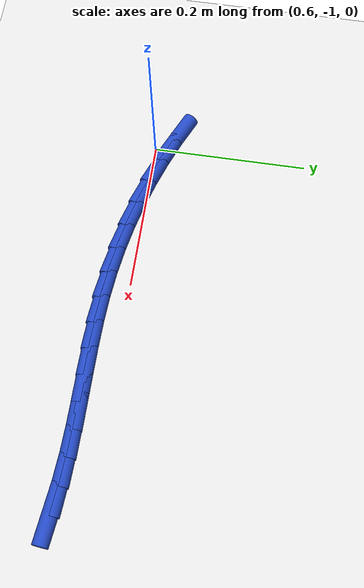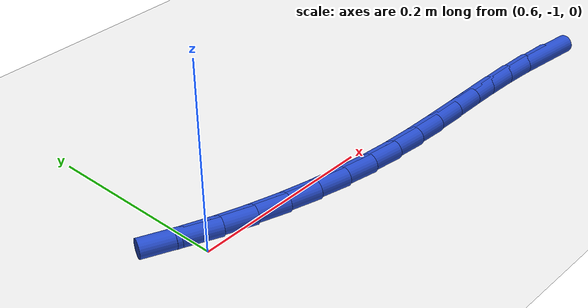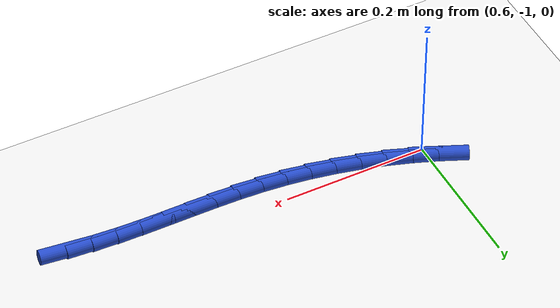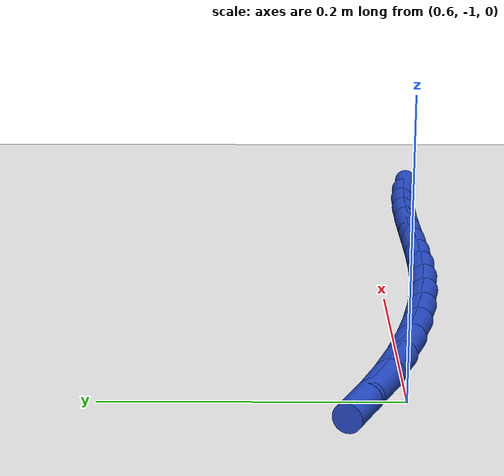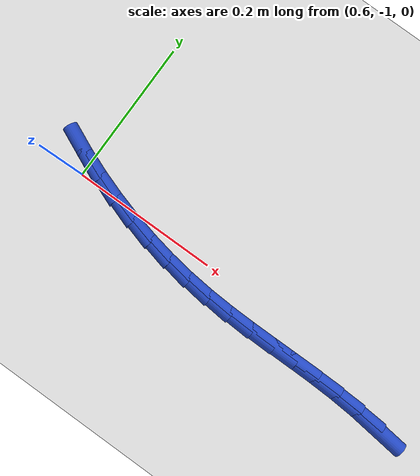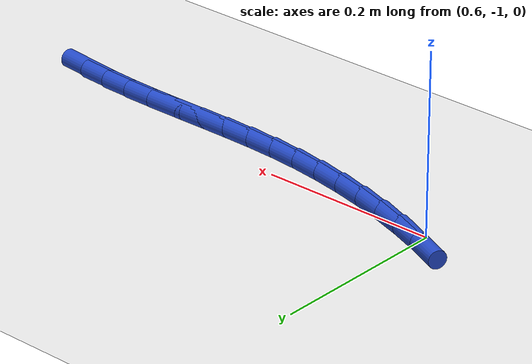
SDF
<sdf version="1.6">
 <world name="default">
  <model name="ground_plane">
   <static>1</static>
   <link name="link">
    <collision name="collision">
     <geometry><plane><normal>0 0 1</normal><size>100 100</size></plane></geometry>
     <surface><friction><ode><mu>100</mu><mu2>50</mu2></ode></friction></surface>
    </collision>
    <visual name="visual">
     <cast_shadows>0</cast_shadows>
     <geometry><plane><normal>0 0 1</normal><size>100 100</size></plane></geometry>
     <material>
      <script><uri>file://media/materials/scripts/gazebo.material</uri><name>Gazebo/WhiteGlow</name></script>
     </material>
    </visual>
   </link>
  </model>
  <model name="line">
   <link name="link_150">
    <pose>1.091584570807914 -1.0406383326134858 0.01 0 1.57 -0.11338291007146395</pose>
    <collision name="collision">
     <geometry><cylinder><radius>0.01</radius><length>0.08</length></cylinder></geometry>
    </collision>
    <visual name="visual">
     <material>
      <script><name>Gazebo/Blue</name><uri>file://media/materials/scripts/gazebo.material</uri></script>
     </material>
     <geometry><cylinder><radius>0.01</radius><length>0.08</length></cylinder></geometry>
    </visual>
   </link>
   <link name="link_151">
    <pose>1.057123456048985 -1.0367142009087924 0.01 0 1.57 -0.0650261353724896</pose>
    <collision name="collision">
     <geometry><cylinder><radius>0.01</radius><length>0.08</length></cylinder></geometry>
    </collision>
    <visual name="visual">
     <material>
      <script><name>Gazebo/Blue</name><uri>file://media/materials/scripts/gazebo.material</uri></script>
     </material>
     <geometry><cylinder><radius>0.01</radius><length>0.08</length></cylinder></geometry>
    </visual>
   </link>
   <link name="link_152">
    <pose>1.0230234818593003 -1.0344936807404375 0.01 0 1.57 -0.028891346559565594</pose>
    <collision name="collision">
     <geometry><cylinder><radius>0.01</radius><length>0.08</length></cylinder></geometry>
    </collision>
    <visual name="visual">
     <material>
      <script><name>Gazebo/Blue</name><uri>file://media/materials/scripts/gazebo.material</uri></script>
     </material>
     <geometry><cylinder><radius>0.01</radius><length>0.08</length></cylinder></geometry>
    </visual>
   </link>
   <link name="link_153">
    <pose>0.9892119029032866 -1.0335165468055045 0.01 0 1.57 -0.0057736414649946334</pose>
    <collision name="collision">
     <geometry><cylinder><radius>0.01</radius><length>0.08</length></cylinder></geometry>
    </collision>
    <visual name="visual">
     <material>
      <script><name>Gazebo/Blue</name><uri>file://media/materials/scripts/gazebo.material</uri></script>
     </material>
     <geometry><cylinder><radius>0.01</radius><length>0.08</length></cylinder></geometry>
    </visual>
   </link>
   <link name="link_154">
    <pose>0.9556159738453708 -1.0333225738010767 0.01 0 1.57 0.003855017184916673</pose>
    <collision name="collision">
     <geometry><cylinder><radius>0.01</radius><length>0.08</length></cylinder></geometry>
    </collision>
    <visual name="visual">
     <material>
      <script><name>Gazebo/Blue</name><uri>file://media/materials/scripts/gazebo.material</uri></script>
     </material>
     <geometry><cylinder><radius>0.01</radius><length>0.08</length></cylinder></geometry>
    </visual>
   </link>
   <link name="link_155">
    <pose>0.92216294934998 -1.0334515364242391 0.01 0 1.57 -0.0002494409010571956</pose>
    <collision name="collision">
     <geometry><cylinder><radius>0.01</radius><length>0.08</length></cylinder></geometry>
    </collision>
    <visual name="visual">
     <material>
      <script><name>Gazebo/Blue</name><uri>file://media/materials/scripts/gazebo.material</uri></script>
     </material>
     <geometry><cylinder><radius>0.01</radius><length>0.08</length></cylinder></geometry>
    </visual>
   </link>
   <link name="link_156">
    <pose>0.8887800840815403 -1.033443209372074 0.01 0 1.57 -0.018144895916467233</pose>
    <collision name="collision">
     <geometry><cylinder><radius>0.01</radius><length>0.08</length></cylinder></geometry>
    </collision>
    <visual name="visual">
     <material>
      <script><name>Gazebo/Blue</name><uri>file://media/materials/scripts/gazebo.material</uri></script>
     </material>
     <geometry><cylinder><radius>0.01</radius><length>0.08</length></cylinder></geometry>
    </visual>
   </link>
   <link name="link_157">
    <pose>0.8553946327044792 -1.032837367341666 0.01 0 1.57 -0.0496764722788299</pose>
    <collision name="collision">
     <geometry><cylinder><radius>0.01</radius><length>0.08</length></cylinder></geometry>
    </collision>
    <visual name="visual">
     <material>
      <script><name>Gazebo/Blue</name><uri>file://media/materials/scripts/gazebo.material</uri></script>
     </material>
     <geometry><cylinder><radius>0.01</radius><length>0.08</length></cylinder></geometry>
    </visual>
   </link>
   <link name="link_158">
    <pose>0.8219338498832232 -1.0311737850300986 0.01 0 1.57 -0.09357650028104567</pose>
    <collision name="collision">
     <geometry><cylinder><radius>0.01</radius><length>0.08</length></cylinder></geometry>
    </collision>
    <visual name="visual">
     <material>
      <script><name>Gazebo/Blue</name><uri>file://media/materials/scripts/gazebo.material</uri></script>
     </material>
     <geometry><cylinder><radius>0.01</radius><length>0.08</length></cylinder></geometry>
    </visual>
   </link>
   <link name="link_159">
    <pose>0.7883367205108551 -1.0280206743977862 0.01 0 1.57 -0.14124827755428127</pose>
    <collision name="collision">
     <geometry><cylinder><radius>0.01</radius><length>0.08</length></cylinder></geometry>
    </collision>
    <visual name="visual">
     <material>
      <script><name>Gazebo/Blue</name><uri>file://media/materials/scripts/gazebo.material</uri></script>
     </material>
     <geometry><cylinder><radius>0.01</radius><length>0.08</length></cylinder></geometry>
    </visual>
   </link>
   <link name="link_160">
    <pose>0.7546601102829729 -1.0232320225183986 0.01 0 1.57 -0.1881977005239545</pose>
    <collision name="collision">
     <geometry><cylinder><radius>0.01</radius><length>0.08</length></cylinder></geometry>
    </collision>
    <visual name="visual">
     <material>
      <script><name>Gazebo/Blue</name><uri>file://media/materials/scripts/gazebo.material</uri></script>
     </material>
     <geometry><cylinder><radius>0.01</radius><length>0.08</length></cylinder></geometry>
    </visual>
   </link>
   <link name="link_161">
    <pose>0.7210289912149164 -1.0168269247005584 0.01 0 1.57 -0.2346994875162252</pose>
    <collision name="collision">
     <geometry><cylinder><radius>0.01</radius><length>0.08</length></cylinder></geometry>
    </collision>
    <visual name="visual">
     <material>
      <script><name>Gazebo/Blue</name><uri>file://media/materials/scripts/gazebo.material</uri></script>
     </material>
     <geometry><cylinder><radius>0.01</radius><length>0.08</length></cylinder></geometry>
    </visual>
   </link>
   <link name="link_162">
    <pose>0.6875691614721905 -1.0088264790654884 0.01 0 1.57 -0.28107487865710296</pose>
    <collision name="collision">
     <geometry><cylinder><radius>0.01</radius><length>0.08</length></cylinder></geometry>
    </collision>
    <visual name="visual">
     <material>
      <script><name>Gazebo/Blue</name><uri>file://media/materials/scripts/gazebo.material</uri></script>
     </material>
     <geometry><cylinder><radius>0.01</radius><length>0.08</length></cylinder></geometry>
    </visual>
   </link>
   <link name="link_163">
    <pose>0.6544064192202991 -0.9992517837344126 0.01 0 1.57 -0.3276370829188992</pose>
    <collision name="collision">
     <geometry><cylinder><radius>0.01</radius><length>0.08</length></cylinder></geometry>
    </collision>
    <visual name="visual">
     <material>
      <script><name>Gazebo/Blue</name><uri>file://media/materials/scripts/gazebo.material</uri></script>
     </material>
     <geometry><cylinder><radius>0.01</radius><length>0.08</length></cylinder></geometry>
    </visual>
   </link>
   <link name="link_164">
    <pose>0.6216665626247465 -0.9881239368285532 0.01 0 1.57 -0.3746933174426562</pose>
    <collision name="collision">
     <geometry><cylinder><radius>0.01</radius><length>0.08</length></cylinder></geometry>
    </collision>
    <visual name="visual">
     <material>
      <script><name>Gazebo/Blue</name><uri>file://media/materials/scripts/gazebo.material</uri></script>
     </material>
     <geometry><cylinder><radius>0.01</radius><length>0.08</length></cylinder></geometry>
    </visual>
   </link>
   <link name="link_165">
    <pose>0.5894753898510371 -0.9754640364691332 0.01 0 1.57 -0.42254634994151935</pose>
    <collision name="collision">
     <geometry><cylinder><radius>0.01</radius><length>0.08</length></cylinder></geometry>
    </collision>
    <visual name="visual">
     <material>
      <script><name>Gazebo/Blue</name><uri>file://media/materials/scripts/gazebo.material</uri></script>
     </material>
     <geometry><cylinder><radius>0.01</radius><length>0.08</length></cylinder></geometry>
    </visual>
   </link>
  </model>
 </world>
</sdf>
